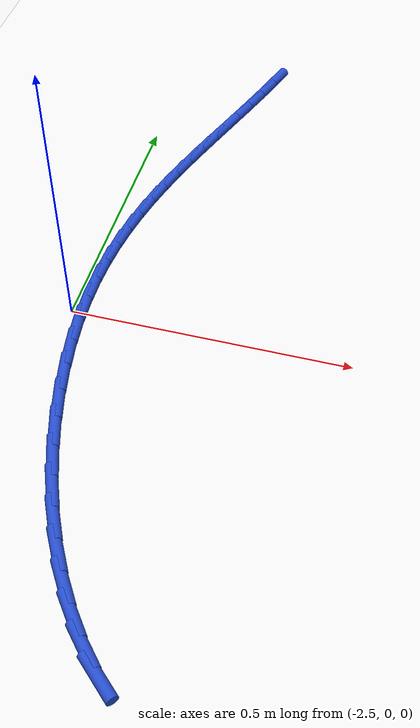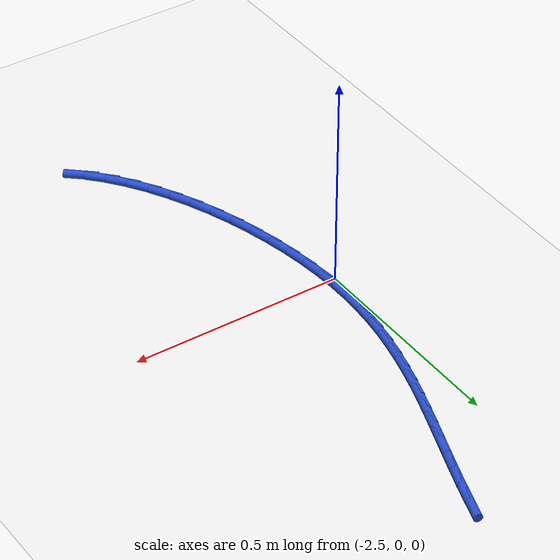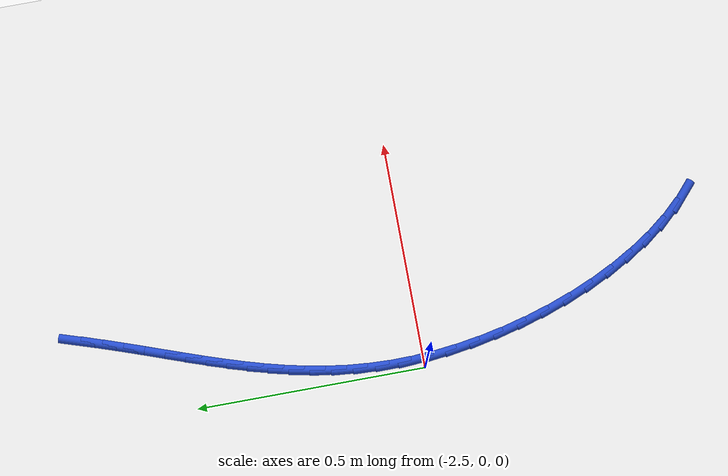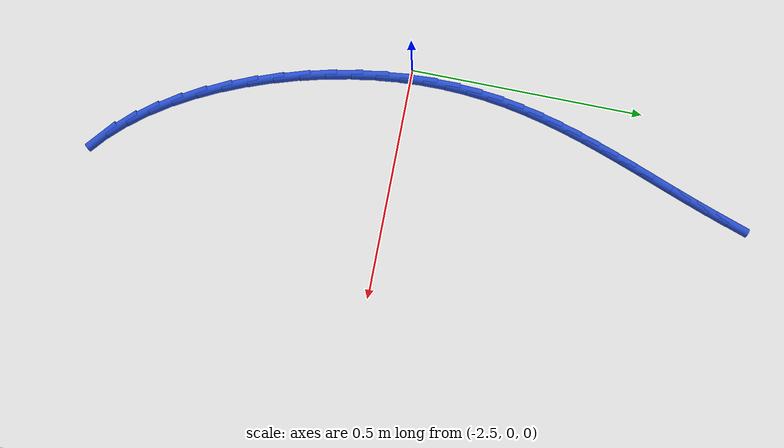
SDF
<sdf version="1.6">
 <world name="default">
  <model name="ground_plane">
   <static>1</static>
   <link name="link">
    <collision name="collision">
     <geometry><plane><normal>0 0 1</normal><size>100 100</size></plane></geometry>
     <surface><friction><ode><mu>100</mu><mu2>50</mu2></ode></friction></surface>
    </collision>
    <visual name="visual">
     <cast_shadows>0</cast_shadows>
     <geometry><plane><normal>0 0 1</normal><size>100 100</size></plane></geometry>
     <material>
      <script><uri>file://media/materials/scripts/gazebo.material</uri><name>Gazebo/WhiteGlow</name></script>
     </material>
    </visual>
   </link>
  </model>
  <model name="line">
   <link name="link_74">
    <pose>-2.306814683928416 0.7314003934572242 0.01 0 1.57 1.2571057335215645</pose>
    <collision name="collision">
     <geometry><cylinder><radius>0.01</radius><length>0.08</length></cylinder></geometry>
    </collision>
    <visual name="visual">
     <material>
      <script><name>Gazebo/Blue</name><uri>file://media/materials/scripts/gazebo.material</uri></script>
     </material>
     <geometry><cylinder><radius>0.01</radius><length>0.08</length></cylinder></geometry>
    </visual>
   </link>
   <link name="link_75">
    <pose>-2.321695354054454 0.6855292601879672 0.01 0 1.57 1.2414173218205748</pose>
    <collision name="collision">
     <geometry><cylinder><radius>0.01</radius><length>0.08</length></cylinder></geometry>
    </collision>
    <visual name="visual">
     <material>
      <script><name>Gazebo/Blue</name><uri>file://media/materials/scripts/gazebo.material</uri></script>
     </material>
     <geometry><cylinder><radius>0.01</radius><length>0.08</length></cylinder></geometry>
    </visual>
   </link>
   <link name="link_76">
    <pose>-2.337025129170106 0.6406832169239687 0.01 0 1.57 1.2307891896166439</pose>
    <collision name="collision">
     <geometry><cylinder><radius>0.01</radius><length>0.08</length></cylinder></geometry>
    </collision>
    <visual name="visual">
     <material>
      <script><name>Gazebo/Blue</name><uri>file://media/materials/scripts/gazebo.material</uri></script>
     </material>
     <geometry><cylinder><radius>0.01</radius><length>0.08</length></cylinder></geometry>
    </visual>
   </link>
   <link name="link_77">
    <pose>-2.352591573334029 0.5966785011013751 0.01 0 1.57 1.2255327627346562</pose>
    <collision name="collision">
     <geometry><cylinder><radius>0.01</radius><length>0.08</length></cylinder></geometry>
    </collision>
    <visual name="visual">
     <material>
      <script><name>Gazebo/Blue</name><uri>file://media/materials/scripts/gazebo.material</uri></script>
     </material>
     <geometry><cylinder><radius>0.01</radius><length>0.08</length></cylinder></geometry>
    </visual>
   </link>
   <link name="link_78">
    <pose>-2.3681822506048786 0.5533313501563347 0.01 0 1.57 1.2259002304611057</pose>
    <collision name="collision">
     <geometry><cylinder><radius>0.01</radius><length>0.08</length></cylinder></geometry>
    </collision>
    <visual name="visual">
     <material>
      <script><name>Gazebo/Blue</name><uri>file://media/materials/scripts/gazebo.material</uri></script>
     </material>
     <geometry><cylinder><radius>0.01</radius><length>0.08</length></cylinder></geometry>
    </visual>
   </link>
   <link name="link_79">
    <pose>-2.3835847250413167 0.5104580015249949 0.01 0 1.57 1.2320794972122886</pose>
    <collision name="collision">
     <geometry><cylinder><radius>0.01</radius><length>0.08</length></cylinder></geometry>
    </collision>
    <visual name="visual">
     <material>
      <script><name>Gazebo/Blue</name><uri>file://media/materials/scripts/gazebo.material</uri></script>
     </material>
     <geometry><cylinder><radius>0.01</radius><length>0.08</length></cylinder></geometry>
    </visual>
   </link>
   <link name="link_80">
    <pose>-2.3985865607019967 0.46787469264350184 0.01 0 1.57 1.2441857638782754</pose>
    <collision name="collision">
     <geometry><cylinder><radius>0.01</radius><length>0.08</length></cylinder></geometry>
    </collision>
    <visual name="visual">
     <material>
      <script><name>Gazebo/Blue</name><uri>file://media/materials/scripts/gazebo.material</uri></script>
     </material>
     <geometry><cylinder><radius>0.01</radius><length>0.08</length></cylinder></geometry>
    </visual>
   </link>
   <link name="link_81">
    <pose>-2.4129753216455785 0.4253976609480045 0.01 0 1.57 1.2622490584406183</pose>
    <collision name="collision">
     <geometry><cylinder><radius>0.01</radius><length>0.08</length></cylinder></geometry>
    </collision>
    <visual name="visual">
     <material>
      <script><name>Gazebo/Blue</name><uri>file://media/materials/scripts/gazebo.material</uri></script>
     </material>
     <geometry><cylinder><radius>0.01</radius><length>0.08</length></cylinder></geometry>
    </visual>
   </link>
   <link name="link_82">
    <pose>-2.426538571930719 0.38284314387464957 0.01 0 1.57 1.2861979775170518</pose>
    <collision name="collision">
     <geometry><cylinder><radius>0.01</radius><length>0.08</length></cylinder></geometry>
    </collision>
    <visual name="visual">
     <material>
      <script><name>Gazebo/Blue</name><uri>file://media/materials/scripts/gazebo.material</uri></script>
     </material>
     <geometry><cylinder><radius>0.01</radius><length>0.08</length></cylinder></geometry>
    </visual>
   </link>
   <link name="link_83">
    <pose>-2.4390638756160756 0.3400273788595839 0.01 0 1.57 1.315841167530883</pose>
    <collision name="collision">
     <geometry><cylinder><radius>0.01</radius><length>0.08</length></cylinder></geometry>
    </collision>
    <visual name="visual">
     <material>
      <script><name>Gazebo/Blue</name><uri>file://media/materials/scripts/gazebo.material</uri></script>
     </material>
     <geometry><cylinder><radius>0.01</radius><length>0.08</length></cylinder></geometry>
    </visual>
   </link>
   <link name="link_84">
    <pose>-2.450338796760307 0.29676660333895605 0.01 0 1.57 1.3508495517596677</pose>
    <collision name="collision">
     <geometry><cylinder><radius>0.01</radius><length>0.08</length></cylinder></geometry>
    </collision>
    <visual name="visual">
     <material>
      <script><name>Gazebo/Blue</name><uri>file://media/materials/scripts/gazebo.material</uri></script>
     </material>
     <geometry><cylinder><radius>0.01</radius><length>0.08</length></cylinder></geometry>
    </visual>
   </link>
   <link name="link_85">
    <pose>-2.46015089942207 0.25287705474891226 0.01 0 1.57 1.3907436875496384</pose>
    <collision name="collision">
     <geometry><cylinder><radius>0.01</radius><length>0.08</length></cylinder></geometry>
    </collision>
    <visual name="visual">
     <material>
      <script><name>Gazebo/Blue</name><uri>file://media/materials/scripts/gazebo.material</uri></script>
     </material>
     <geometry><cylinder><radius>0.01</radius><length>0.08</length></cylinder></geometry>
    </visual>
   </link>
   <link name="link_86">
    <pose>-2.4682877476600216 0.20817497052560083 0.01 0 1.57 1.4348913826191054</pose>
    <collision name="collision">
     <geometry><cylinder><radius>0.01</radius><length>0.08</length></cylinder></geometry>
    </collision>
    <visual name="visual">
     <material>
      <script><name>Gazebo/Blue</name><uri>file://media/materials/scripts/gazebo.material</uri></script>
     </material>
     <geometry><cylinder><radius>0.01</radius><length>0.08</length></cylinder></geometry>
    </visual>
   </link>
   <link name="link_87">
    <pose>-2.474536905532821 0.16247658810516885 0.01 0 1.57 1.4825201741517782</pose>
    <collision name="collision">
     <geometry><cylinder><radius>0.01</radius><length>0.08</length></cylinder></geometry>
    </collision>
    <visual name="visual">
     <material>
      <script><name>Gazebo/Blue</name><uri>file://media/materials/scripts/gazebo.material</uri></script>
     </material>
     <geometry><cylinder><radius>0.01</radius><length>0.08</length></cylinder></geometry>
    </visual>
   </link>
   <link name="link_88">
    <pose>-2.4786859370991245 0.1155981449237632 0.01 0 1.57 1.532747057590261</pose>
    <collision name="collision">
     <geometry><cylinder><radius>0.01</radius><length>0.08</length></cylinder></geometry>
    </collision>
    <visual name="visual">
     <material>
      <script><name>Gazebo/Blue</name><uri>file://media/materials/scripts/gazebo.material</uri></script>
     </material>
     <geometry><cylinder><radius>0.01</radius><length>0.08</length></cylinder></geometry>
    </visual>
   </link>
   <link name="link_89">
    <pose>-2.480522406417591 0.06735587841753213 0.01 0 1.57 -1.5569685094216623</pose>
    <collision name="collision">
     <geometry><cylinder><radius>0.01</radius><length>0.08</length></cylinder></geometry>
    </collision>
    <visual name="visual">
     <material>
      <script><name>Gazebo/Blue</name><uri>file://media/materials/scripts/gazebo.material</uri></script>
     </material>
     <geometry><cylinder><radius>0.01</radius><length>0.08</length></cylinder></geometry>
    </visual>
   </link>
   <link name="link_90">
    <pose>-2.479833877546876 0.01756602602262264 0.01 0 1.57 -1.5046810278636942</pose>
    <collision name="collision">
     <geometry><cylinder><radius>0.01</radius><length>0.08</length></cylinder></geometry>
    </collision>
    <visual name="visual">
     <material>
      <script><name>Gazebo/Blue</name><uri>file://media/materials/scripts/gazebo.material</uri></script>
     </material>
     <geometry><cylinder><radius>0.01</radius><length>0.08</length></cylinder></geometry>
    </visual>
   </link>
   <link name="link_91">
    <pose>-2.476425668518579 -0.03390831668708822 0.01 0 1.57 -1.4547143379451373</pose>
    <collision name="collision">
     <geometry><cylinder><radius>0.01</radius><length>0.08</length></cylinder></geometry>
    </collision>
    <visual name="visual">
     <material>
      <script><name>Gazebo/Blue</name><uri>file://media/materials/scripts/gazebo.material</uri></script>
     </material>
     <geometry><cylinder><radius>0.01</radius><length>0.08</length></cylinder></geometry>
    </visual>
   </link>
   <link name="link_92">
    <pose>-2.4702590500700836 -0.08679244748541276 0.01 0 1.57 -1.4071808275530115</pose>
    <collision name="collision">
     <geometry><cylinder><radius>0.01</radius><length>0.08</length></cylinder></geometry>
    </collision>
    <visual name="visual">
     <material>
      <script><name>Gazebo/Blue</name><uri>file://media/materials/scripts/gazebo.material</uri></script>
     </material>
     <geometry><cylinder><radius>0.01</radius><length>0.08</length></cylinder></geometry>
    </visual>
   </link>
   <link name="link_93">
    <pose>-2.4613762010797884 -0.14059812293891405 0.01 0 1.57 -1.360867366458261</pose>
    <collision name="collision">
     <geometry><cylinder><radius>0.01</radius><length>0.08</length></cylinder></geometry>
    </collision>
    <visual name="visual">
     <material>
      <script><name>Gazebo/Blue</name><uri>file://media/materials/scripts/gazebo.material</uri></script>
     </material>
     <geometry><cylinder><radius>0.01</radius><length>0.08</length></cylinder></geometry>
    </visual>
   </link>
   <link name="link_94">
    <pose>-2.4498199874801916 -0.19483528626928778 0.01 0 1.57 -1.3146953741474041</pose>
    <collision name="collision">
     <geometry><cylinder><radius>0.01</radius><length>0.08</length></cylinder></geometry>
    </collision>
    <visual name="visual">
     <material>
      <script><name>Gazebo/Blue</name><uri>file://media/materials/scripts/gazebo.material</uri></script>
     </material>
     <geometry><cylinder><radius>0.01</radius><length>0.08</length></cylinder></geometry>
    </visual>
   </link>
   <link name="link_95">
    <pose>-2.435633275203793 -0.24901388069822888 0.01 0 1.57 -1.2676570115084247</pose>
    <collision name="collision">
     <geometry><cylinder><radius>0.01</radius><length>0.08</length></cylinder></geometry>
    </collision>
    <visual name="visual">
     <material>
      <script><name>Gazebo/Blue</name><uri>file://media/materials/scripts/gazebo.material</uri></script>
     </material>
     <geometry><cylinder><radius>0.01</radius><length>0.08</length></cylinder></geometry>
    </visual>
   </link>
   <link name="link_96">
    <pose>-2.418858930183093 -0.3026438494474322 0.01 0 1.57 -1.218754294220981</pose>
    <collision name="collision">
     <geometry><cylinder><radius>0.01</radius><length>0.08</length></cylinder></geometry>
    </collision>
    <visual name="visual">
     <material>
      <script><name>Gazebo/Blue</name><uri>file://media/materials/scripts/gazebo.material</uri></script>
     </material>
     <geometry><cylinder><radius>0.01</radius><length>0.08</length></cylinder></geometry>
    </visual>
   </link>
   <link name="link_97">
    <pose>-2.3995398183505903 -0.3552351357385925 0.01 0 1.57 -1.1669462787900549</pose>
    <collision name="collision">
     <geometry><cylinder><radius>0.01</radius><length>0.08</length></cylinder></geometry>
    </collision>
    <visual name="visual">
     <material>
      <script><name>Gazebo/Blue</name><uri>file://media/materials/scripts/gazebo.material</uri></script>
     </material>
     <geometry><cylinder><radius>0.01</radius><length>0.08</length></cylinder></geometry>
    </visual>
   </link>
   <link name="link_98">
    <pose>-2.3777188056387857 -0.4062976827934056 0.01 0 1.57 -1.111101180725822</pose>
    <collision name="collision">
     <geometry><cylinder><radius>0.01</radius><length>0.08</length></cylinder></geometry>
    </collision>
    <visual name="visual">
     <material>
      <script><name>Gazebo/Blue</name><uri>file://media/materials/scripts/gazebo.material</uri></script>
     </material>
     <geometry><cylinder><radius>0.01</radius><length>0.08</length></cylinder></geometry>
    </visual>
   </link>
   <link name="link_99">
    <pose>-2.353438757980178 -0.4553414338335644 0.01 0 1.57 -1.0499533950975566</pose>
    <collision name="collision">
     <geometry><cylinder><radius>0.01</radius><length>0.08</length></cylinder></geometry>
    </collision>
    <visual name="visual">
     <material>
      <script><name>Gazebo/Blue</name><uri>file://media/materials/scripts/gazebo.material</uri></script>
     </material>
     <geometry><cylinder><radius>0.01</radius><length>0.08</length></cylinder></geometry>
    </visual>
   </link>
   <link name="link_100">
    <pose>-2.3267425413072664 -0.5018763320807647 0.01 0 1.57 -0.9820700991133127</pose>
    <collision name="collision">
     <geometry><cylinder><radius>0.01</radius><length>0.08</length></cylinder></geometry>
    </collision>
    <visual name="visual">
     <material>
      <script><name>Gazebo/Blue</name><uri>file://media/materials/scripts/gazebo.material</uri></script>
     </material>
     <geometry><cylinder><radius>0.01</radius><length>0.08</length></cylinder></geometry>
    </visual>
   </link>
   <link name="link_101">
    <pose>-2.2976730215525523 -0.5454123207567011 0.01 0 1.57 -0.9058401026924299</pose>
    <collision name="collision">
     <geometry><cylinder><radius>0.01</radius><length>0.08</length></cylinder></geometry>
    </collision>
    <visual name="visual">
     <material>
      <script><name>Gazebo/Blue</name><uri>file://media/materials/scripts/gazebo.material</uri></script>
     </material>
     <geometry><cylinder><radius>0.01</radius><length>0.08</length></cylinder></geometry>
    </visual>
   </link>
   <link name="link_102">
    <pose>-2.2662730646485336 -0.5854593430830689 0.01 0 1.57 -0.8195108385200681</pose>
    <collision name="collision">
     <geometry><cylinder><radius>0.01</radius><length>0.08</length></cylinder></geometry>
    </collision>
    <visual name="visual">
     <material>
      <script><name>Gazebo/Blue</name><uri>file://media/materials/scripts/gazebo.material</uri></script>
     </material>
     <geometry><cylinder><radius>0.01</radius><length>0.08</length></cylinder></geometry>
    </visual>
   </link>
   <link name="link_103">
    <pose>-2.2325855365277105 -0.6215273422815635 0.01 0 1.57 -0.721318384833351</pose>
    <collision name="collision">
     <geometry><cylinder><radius>0.01</radius><length>0.08</length></cylinder></geometry>
    </collision>
    <visual name="visual">
     <material>
      <script><name>Gazebo/Blue</name><uri>file://media/materials/scripts/gazebo.material</uri></script>
     </material>
     <geometry><cylinder><radius>0.01</radius><length>0.08</length></cylinder></geometry>
    </visual>
   </link>
  </model>
 </world>
</sdf>
